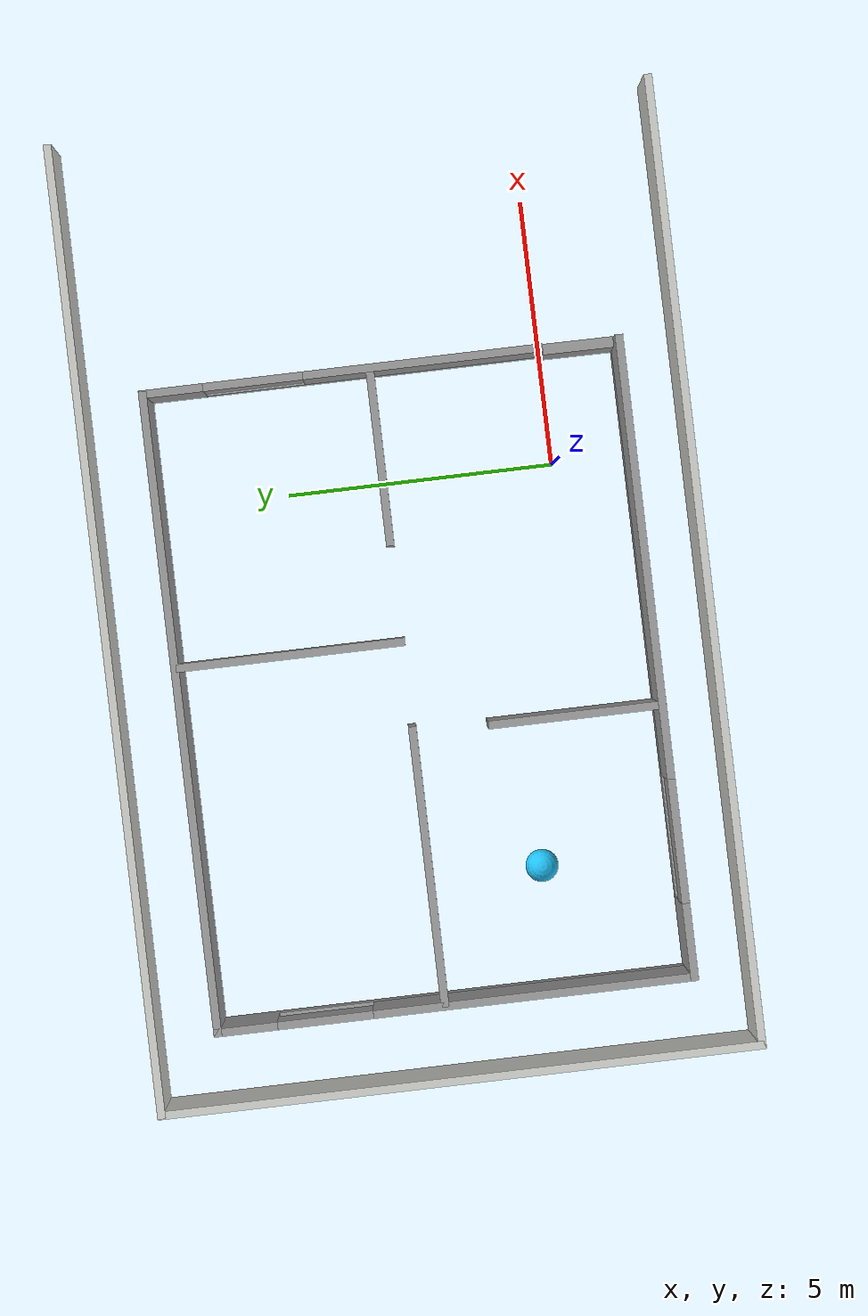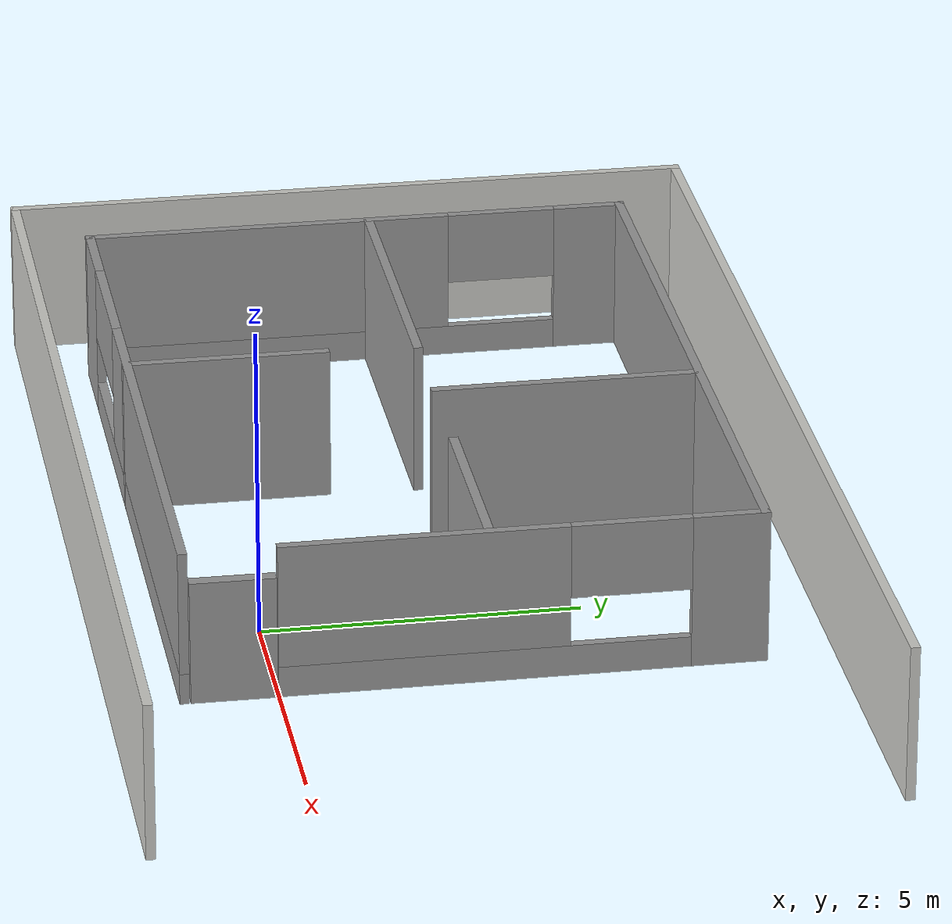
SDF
<sdf version="1.7">
 <world name="default">
  <light name="sun" type="directional">
   <pose>0 0 10 0 -0 0</pose>
   <diffuse>0.8 0.8 0.8 1</diffuse>
   <specular>0.2 0.2 0.2 1</specular>
   <attenuation>
    <range>1000</range>
    <constant>0.9</constant>
    <linear>0.01</linear>
    <quadratic>0.001</quadratic>
   </attenuation>
   <direction>-0.5 0.1 -0.9</direction>
   <spot><inner_angle>0</inner_angle><outer_angle>0</outer_angle><falloff>0</falloff></spot>
  </light>
  <gravity>0 0 -9.8</gravity>
  <magnetic_field>6e-06 2.3e-05 -4.2e-05</magnetic_field>
  <atmosphere type="adiabatic"/>
  <physics type="ode">
   <max_step_size>0.001</max_step_size>
   <real_time_factor>1</real_time_factor>
   <real_time_update_rate>1000</real_time_update_rate>
  </physics>
  <scene><ambient>0.4 0.4 0.4 1</ambient><background>0.7 0.7 0.7 1</background><shadows>1</shadows></scene>
  <audio><device>default</device></audio>
  <spherical_coordinates>
   <surface_model>EARTH_WGS84</surface_model>
   <latitude_deg>0</latitude_deg>
   <longitude_deg>0</longitude_deg>
   <elevation>0</elevation>
   <heading_deg>0</heading_deg>
  </spherical_coordinates>
  <model name="huawei">
   <pose>-2.16203 3.05078 0 0 -0 0</pose>
   <link name="Door_1">
    <collision name="Door_1_Collision">
     <geometry><box><size>1.31853 0.2 2</size></box></geometry>
     <pose>0 0 1 0 -0 0</pose>
    </collision>
    <visual name="Door_1_Visual">
     <pose>0 0 1 0 -0 0</pose>
     <geometry><box><size>1.31853 0.2 2</size></box></geometry>
     <material>
      <script><uri>file://media/materials/scripts/gazebo.material</uri><name>Gazebo/Grey</name></script>
     </material>
    </visual>
    <pose>4.24859 -3.73041 0 0 -0 1.56459</pose>
   </link>
   <link name="Wall_11">
    <collision name="Wall_11_Collision">
     <geometry><box><size>12 0.15 2.5</size></box></geometry>
     <pose>0 0 1.25 0 -0 0</pose>
    </collision>
    <visual name="Wall_11_Visual">
     <pose>0 0 1.25 0 -0 0</pose>
     <geometry><box><size>12 0.15 2.5</size></box></geometry>
     <material>
      <script><uri>file://media/materials/scripts/gazebo.material</uri><name>Gazebo/Grey</name></script>
      <ambient>1 1 1 1</ambient>
     </material>
     <meta><layer>0</layer></meta>
    </visual>
    <pose>-1.65647 4.36674 0 0 -0 0</pose>
   </link>
   <link name="Wall_13">
    <pose>-1.65647 -4.48326 0 0 -0 0</pose>
    <visual name="Wall_13_Visual_0">
     <pose>-5.27987 0 1.25 0 -0 0</pose>
     <geometry><box><size>1.44026 0.15 2.5</size></box></geometry>
     <material>
      <script><uri>file://media/materials/scripts/gazebo.material</uri><name>Gazebo/Grey</name></script>
      <ambient>1 1 1 1</ambient>
     </material>
     <meta><layer>0</layer></meta>
    </visual>
    <collision name="Wall_13_Collision_0">
     <geometry><box><size>1.44026 0.15 2.5</size></box></geometry>
     <pose>-5.27987 0 1.25 0 -0 0</pose>
    </collision>
    <visual name="Wall_13_Visual_1">
     <pose>0.720131 0 0.25 0 -0 0</pose>
     <geometry><box><size>10.5597 0.15 0.5</size></box></geometry>
     <material>
      <script><uri>file://media/materials/scripts/gazebo.material</uri><name>Gazebo/Grey</name></script>
      <ambient>1 1 1 1</ambient>
     </material>
     <meta><layer>0</layer></meta>
    </visual>
    <collision name="Wall_13_Collision_1">
     <geometry><box><size>10.5597 0.15 0.5</size></box></geometry>
     <pose>0.720131 0 0.25 0 -0 0</pose>
    </collision>
    <visual name="Wall_13_Visual_2">
     <pose>1.87281 0 1.5 0 -0 0</pose>
     <geometry><box><size>8.25438 0.15 2</size></box></geometry>
     <material>
      <script><uri>file://media/materials/scripts/gazebo.material</uri><name>Gazebo/Grey</name></script>
      <ambient>1 1 1 1</ambient>
     </material>
     <meta><layer>0</layer></meta>
    </visual>
    <collision name="Wall_13_Collision_2">
     <geometry><box><size>8.25438 0.15 2</size></box></geometry>
     <pose>1.87281 0 1.5 0 -0 0</pose>
    </collision>
    <visual name="Wall_13_Visual_3">
     <pose>-3.40706 0 1.9 0 -0 0</pose>
     <geometry><box><size>2.30536 0.15 1.2</size></box></geometry>
     <material>
      <script><uri>file://media/materials/scripts/gazebo.material</uri><name>Gazebo/Grey</name></script>
      <ambient>1 1 1 1</ambient>
     </material>
     <meta><layer>0</layer></meta>
    </visual>
    <collision name="Wall_13_Collision_3">
     <geometry><box><size>2.30536 0.15 1.2</size></box></geometry>
     <pose>-3.40706 0 1.9 0 -0 0</pose>
    </collision>
   </link>
   <link name="Wall_15">
    <pose>4.26853 0.691741 0 0 -0 -1.5708</pose>
    <visual name="Wall_15_Visual_0">
     <pose>-3.15526 0 1.25 0 -0 0</pose>
     <geometry><box><size>1.18948 0.15 2.5</size></box></geometry>
     <material>
      <script><uri>file://media/materials/scripts/gazebo.material</uri><name>Gazebo/Grey</name></script>
      <ambient>1 1 1 1</ambient>
     </material>
     <meta><layer>0</layer></meta>
    </visual>
    <collision name="Wall_15_Collision_0">
     <geometry><box><size>1.18948 0.15 2.5</size></box></geometry>
     <pose>-3.15526 0 1.25 0 -0 0</pose>
    </collision>
    <visual name="Wall_15_Visual_1">
     <pose>0.594743 0 0.25 0 -0 0</pose>
     <geometry><box><size>6.31051 0.15 0.5</size></box></geometry>
     <material>
      <script><uri>file://media/materials/scripts/gazebo.material</uri><name>Gazebo/Grey</name></script>
      <ambient>1 1 1 1</ambient>
     </material>
     <meta><layer>0</layer></meta>
    </visual>
    <collision name="Wall_15_Collision_1">
     <geometry><box><size>6.31051 0.15 0.5</size></box></geometry>
     <pose>0.594743 0 0.25 0 -0 0</pose>
    </collision>
    <visual name="Wall_15_Visual_2">
     <pose>1.52365 0 1.5 0 -0 0</pose>
     <geometry><box><size>4.4527 0.15 2</size></box></geometry>
     <material>
      <script><uri>file://media/materials/scripts/gazebo.material</uri><name>Gazebo/Grey</name></script>
      <ambient>1 1 1 1</ambient>
     </material>
     <meta><layer>0</layer></meta>
    </visual>
    <collision name="Wall_15_Collision_2">
     <geometry><box><size>4.4527 0.15 2</size></box></geometry>
     <pose>1.52365 0 1.5 0 -0 0</pose>
    </collision>
    <visual name="Wall_15_Visual_3">
     <pose>-1.63161 0 1.9 0 -0 0</pose>
     <geometry><box><size>1.85782 0.15 1.2</size></box></geometry>
     <material>
      <script><uri>file://media/materials/scripts/gazebo.material</uri><name>Gazebo/Grey</name></script>
      <ambient>1 1 1 1</ambient>
     </material>
     <meta><layer>0</layer></meta>
    </visual>
    <collision name="Wall_15_Collision_3">
     <geometry><box><size>1.85782 0.15 1.2</size></box></geometry>
     <pose>-1.63161 0 1.9 0 -0 0</pose>
    </collision>
   </link>
   <link name="Wall_17">
    <collision name="Wall_17_Collision">
     <geometry><box><size>5.2 0.15 2.5</size></box></geometry>
     <pose>0 0 1.25 0 -0 0</pose>
    </collision>
    <visual name="Wall_17_Visual">
     <pose>0 0 1.25 0 -0 0</pose>
     <geometry><box><size>5.2 0.15 2.5</size></box></geometry>
     <material>
      <script><uri>file://media/materials/scripts/gazebo.material</uri><name>Gazebo/Grey</name></script>
      <ambient>1 1 1 1</ambient>
     </material>
     <meta><layer>0</layer></meta>
    </visual>
    <pose>-4.99543 0.145987 0 0 -0 0</pose>
   </link>
   <link name="Wall_20">
    <collision name="Wall_20_Collision">
     <geometry><box><size>3.3 0.15 2.5</size></box></geometry>
     <pose>0 0 1.25 0 -0 0</pose>
    </collision>
    <visual name="Wall_20_Visual">
     <pose>0 0 1.25 0 -0 0</pose>
     <geometry><box><size>3.3 0.15 2.5</size></box></geometry>
     <material>
      <script><uri>file://media/materials/scripts/gazebo.material</uri><name>Gazebo/Grey</name></script>
      <ambient>1 1 1 1</ambient>
     </material>
     <meta><layer>0</layer></meta>
    </visual>
    <pose>-2.53145 -2.90867 0 0 -0 -1.5708</pose>
   </link>
   <link name="Wall_24">
    <collision name="Wall_24_Collision">
     <geometry><box><size>4.25 0.15 2.5</size></box></geometry>
     <pose>0 0 1.25 0 -0 0</pose>
    </collision>
    <visual name="Wall_24_Visual">
     <pose>0 0 1.25 0 -0 0</pose>
     <geometry><box><size>4.25 0.15 2.5</size></box></geometry>
     <material>
      <script><uri>file://media/materials/scripts/gazebo.material</uri><name>Gazebo/Grey</name></script>
      <ambient>1 1 1 1</ambient>
     </material>
     <meta><layer>0</layer></meta>
    </visual>
    <pose>-0.820426 2.21899 0 0 -0 -1.5708</pose>
   </link>
   <link name="Wall_26">
    <collision name="Wall_26_Collision">
     <geometry><box><size>3.25 0.15 2.5</size></box></geometry>
     <pose>0 0 1.25 0 -0 0</pose>
    </collision>
    <visual name="Wall_26_Visual">
     <pose>0 0 1.25 0 -0 0</pose>
     <geometry><box><size>3.25 0.15 2.5</size></box></geometry>
     <material>
      <script><uri>file://media/materials/scripts/gazebo.material</uri><name>Gazebo/Grey</name></script>
      <ambient>1 1 1 1</ambient>
     </material>
     <meta><layer>0</layer></meta>
    </visual>
    <pose>2.58916 0.153535 0 0 -0 0</pose>
   </link>
   <link name="Wall_3">
    <collision name="Wall_3_Collision">
     <geometry><box><size>11.3 0.15 2.5</size></box></geometry>
     <pose>0 0 1.25 0 -0 0</pose>
    </collision>
    <visual name="Wall_3_Visual">
     <pose>0 0 1.25 0 -0 0</pose>
     <geometry><box><size>11.3 0.15 2.5</size></box></geometry>
     <material>
      <script><uri>file://media/materials/scripts/gazebo.material</uri><name>Gazebo/CeilingTiled</name></script>
      <ambient>1 1 1 1</ambient>
     </material>
     <meta><layer>0</layer></meta>
    </visual>
    <pose>-8.975 -0 0 0 -0 -1.5708</pose>
   </link>
   <link name="Wall_5">
    <collision name="Wall_5_Collision">
     <geometry><box><size>18.1 0.15 2.5</size></box></geometry>
     <pose>0 0 1.25 0 -0 0</pose>
    </collision>
    <visual name="Wall_5_Visual">
     <pose>0 0 1.25 0 -0 0</pose>
     <geometry><box><size>18.1 0.15 2.5</size></box></geometry>
     <material>
      <script><uri>file://media/materials/scripts/gazebo.material</uri><name>Gazebo/CeilingTiled</name></script>
      <ambient>1 1 1 1</ambient>
     </material>
     <meta><layer>0</layer></meta>
    </visual>
    <pose>0 5.575 0 0 -0 0</pose>
   </link>
   <link name="Wall_7">
    <collision name="Wall_7_Collision">
     <geometry><box><size>18.1 0.15 2.5</size></box></geometry>
     <pose>0 0 1.25 0 -0 0</pose>
    </collision>
    <visual name="Wall_7_Visual">
     <pose>0 0 1.25 0 -0 0</pose>
     <geometry><box><size>18.1 0.15 2.5</size></box></geometry>
     <material>
      <script><uri>file://media/materials/scripts/gazebo.material</uri><name>Gazebo/CeilingTiled</name></script>
      <ambient>1 1 1 1</ambient>
     </material>
     <meta><layer>0</layer></meta>
    </visual>
    <pose>0 -5.575 0 0 -0 0</pose>
   </link>
   <link name="Wall_9">
    <pose>-7.58147 -0.058259 0 0 -0 -1.5708</pose>
    <visual name="Wall_9_Visual_0">
     <pose>-3.90526 0 1.25 0 -0 0</pose>
     <geometry><box><size>1.18948 0.15 2.5</size></box></geometry>
     <material>
      <script><uri>file://media/materials/scripts/gazebo.material</uri><name>Gazebo/Grey</name></script>
      <ambient>1 1 1 1</ambient>
     </material>
     <meta><layer>0</layer></meta>
    </visual>
    <collision name="Wall_9_Collision_0">
     <geometry><box><size>1.18948 0.15 2.5</size></box></geometry>
     <pose>-3.90526 0 1.25 0 -0 0</pose>
    </collision>
    <visual name="Wall_9_Visual_1">
     <pose>0.594743 0 0.25 0 -0 0</pose>
     <geometry><box><size>7.81051 0.15 0.5</size></box></geometry>
     <material>
      <script><uri>file://media/materials/scripts/gazebo.material</uri><name>Gazebo/Grey</name></script>
      <ambient>1 1 1 1</ambient>
     </material>
     <meta><layer>0</layer></meta>
    </visual>
    <collision name="Wall_9_Collision_1">
     <geometry><box><size>7.81051 0.15 0.5</size></box></geometry>
     <pose>0.594743 0 0.25 0 -0 0</pose>
    </collision>
    <visual name="Wall_9_Visual_2">
     <pose>1.48297 0 1.5 0 -0 0</pose>
     <geometry><box><size>6.03407 0.15 2</size></box></geometry>
     <material>
      <script><uri>file://media/materials/scripts/gazebo.material</uri><name>Gazebo/Grey</name></script>
      <ambient>1 1 1 1</ambient>
     </material>
     <meta><layer>0</layer></meta>
    </visual>
    <collision name="Wall_9_Collision_2">
     <geometry><box><size>6.03407 0.15 2</size></box></geometry>
     <pose>1.48297 0 1.5 0 -0 0</pose>
    </collision>
    <visual name="Wall_9_Visual_3">
     <pose>-2.42229 0 1.9 0 -0 0</pose>
     <geometry><box><size>1.77645 0.15 1.2</size></box></geometry>
     <material>
      <script><uri>file://media/materials/scripts/gazebo.material</uri><name>Gazebo/Grey</name></script>
      <ambient>1 1 1 1</ambient>
     </material>
     <meta><layer>0</layer></meta>
    </visual>
    <collision name="Wall_9_Collision_3">
     <geometry><box><size>1.77645 0.15 1.2</size></box></geometry>
     <pose>-2.42229 0 1.9 0 -0 0</pose>
    </collision>
   </link>
   <static>1</static>
  </model>
  <model name="aws_robomaker_residential_Ball_01">
   <link name="link">
    <inertial>
     <mass>0.12</mass>
     <inertia>
      <ixx>0.030752</ixx>
      <ixy>0</ixy>
      <ixz>0</ixz>
      <iyy>0.030752</iyy>
      <iyz>0</iyz>
      <izz>0.030752</izz>
     </inertia>
    </inertial>
    <collision name="collision">
     <geometry><sphere><radius>0.31</radius></sphere></geometry>
     <surface>
      <friction><ode><mu>0.85</mu><mu2>0.85</mu2></ode></friction>
      <contact><ode><kd>8500</kd><max_vel>5.1</max_vel></ode></contact>
     </surface>
    </collision>
    <visual name="visual">
     <geometry><sphere><radius>0.31</radius></sphere></geometry>
     <material><diffuse>0.12 0.76 0.97 1</diffuse><ambient>0.03 0.21 0.27 1</ambient></material>
     <meta><layer>1</layer></meta>
    </visual>
   </link>
   <pose>-7.49902 1.06833 0.315238 0 -0 0</pose>
  </model>
 </world>
</sdf>
